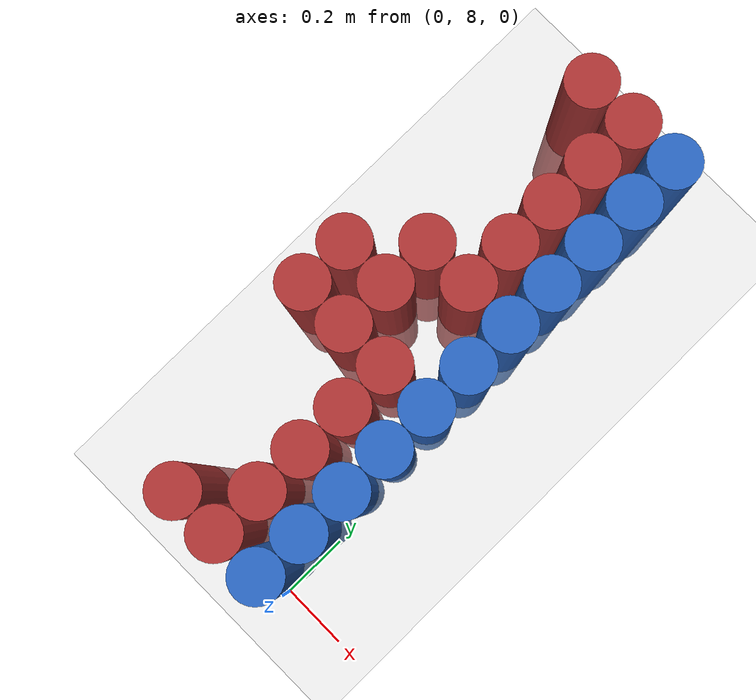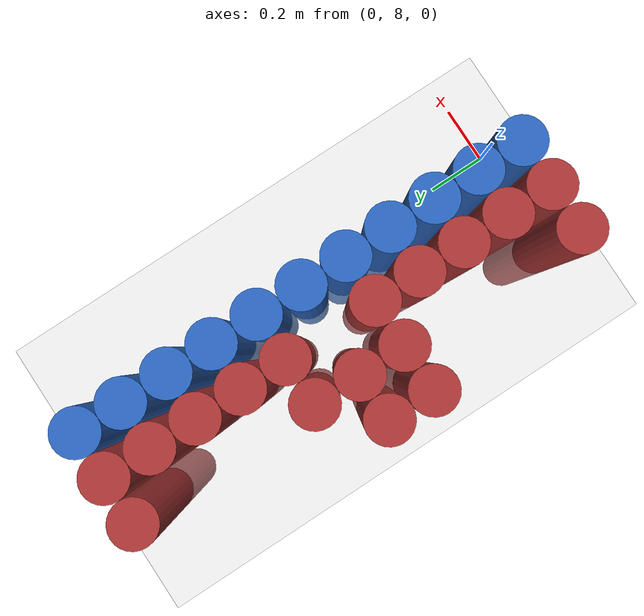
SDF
<sdf version="1.6">
 <world name="default">
  <model name="ground_plane">
   <static>1</static>
   <link name="link">
    <collision name="collision">
     <geometry><plane><normal>0 0 1</normal><size>100 100</size></plane></geometry>
     <surface><friction><ode><mu>100</mu><mu2>50</mu2></ode></friction></surface>
    </collision>
    <visual name="visual">
     <cast_shadows>0</cast_shadows>
     <geometry><plane><normal>0 0 1</normal><size>100 100</size></plane></geometry>
     <material>
      <script><uri>file://media/materials/scripts/gazebo.material</uri><name>Gazebo/Grey</name></script>
     </material>
    </visual>
   </link>
  </model>
  <model name="unit_cylinder_315">
   <static>1</static>
   <pose>-0.525000 8.625000 0.000000 0.000000 0.000000 0.000000</pose>
   <link name="link">
    <inertial>
     <mass>1</mass>
     <inertia><ixx>0.145833</ixx><ixy>0</ixy><ixz>0</ixz><iyy>0.145833</iyy><iyz>0</iyz><izz>0.125</izz></inertia>
    </inertial>
    <collision name="collision">
     <geometry><cylinder><radius>0.075000</radius><length>1</length></cylinder></geometry>
    </collision>
    <visual name="visual">
     <geometry><cylinder><radius>0.075000</radius><length>1</length></cylinder></geometry>
     <material>
      <ambient>0.648000 0.192000 0.192000 1</ambient>
      <diffuse>0.648000 0.192000 0.192000 1</diffuse>
     </material>
     <material>
      <script><name>Gazebo/Grey</name><uri>file://media/materials/scripts/gazebo.material</uri></script>
     </material>
    </visual>
   </link>
  </model>
  <model name="unit_cylinder_316">
   <static>1</static>
   <pose>-0.525000 8.775000 0.000000 0.000000 0.000000 0.000000</pose>
   <link name="link">
    <inertial>
     <mass>1</mass>
     <inertia><ixx>0.145833</ixx><ixy>0</ixy><ixz>0</ixz><iyy>0.145833</iyy><iyz>0</iyz><izz>0.125</izz></inertia>
    </inertial>
    <collision name="collision">
     <geometry><cylinder><radius>0.075000</radius><length>1</length></cylinder></geometry>
    </collision>
    <visual name="visual">
     <geometry><cylinder><radius>0.075000</radius><length>1</length></cylinder></geometry>
     <material>
      <ambient>0.648000 0.192000 0.192000 1</ambient>
      <diffuse>0.648000 0.192000 0.192000 1</diffuse>
     </material>
     <material>
      <script><name>Gazebo/Grey</name><uri>file://media/materials/scripts/gazebo.material</uri></script>
     </material>
    </visual>
   </link>
  </model>
  <model name="unit_cylinder_330">
   <static>1</static>
   <pose>-0.375000 8.025000 0.000000 0.000000 0.000000 0.000000</pose>
   <link name="link">
    <inertial>
     <mass>1</mass>
     <inertia><ixx>0.145833</ixx><ixy>0</ixy><ixz>0</ixz><iyy>0.145833</iyy><iyz>0</iyz><izz>0.125</izz></inertia>
    </inertial>
    <collision name="collision">
     <geometry><cylinder><radius>0.075000</radius><length>1</length></cylinder></geometry>
    </collision>
    <visual name="visual">
     <geometry><cylinder><radius>0.075000</radius><length>1</length></cylinder></geometry>
     <material>
      <ambient>0.648000 0.192000 0.192000 1</ambient>
      <diffuse>0.648000 0.192000 0.192000 1</diffuse>
     </material>
     <material>
      <script><name>Gazebo/Grey</name><uri>file://media/materials/scripts/gazebo.material</uri></script>
     </material>
    </visual>
   </link>
  </model>
  <model name="unit_cylinder_331">
   <static>1</static>
   <pose>-0.375000 8.625000 0.000000 0.000000 0.000000 0.000000</pose>
   <link name="link">
    <inertial>
     <mass>1</mass>
     <inertia><ixx>0.145833</ixx><ixy>0</ixy><ixz>0</ixz><iyy>0.145833</iyy><iyz>0</iyz><izz>0.125</izz></inertia>
    </inertial>
    <collision name="collision">
     <geometry><cylinder><radius>0.075000</radius><length>1</length></cylinder></geometry>
    </collision>
    <visual name="visual">
     <geometry><cylinder><radius>0.075000</radius><length>1</length></cylinder></geometry>
     <material>
      <ambient>0.648000 0.192000 0.192000 1</ambient>
      <diffuse>0.648000 0.192000 0.192000 1</diffuse>
     </material>
     <material>
      <script><name>Gazebo/Grey</name><uri>file://media/materials/scripts/gazebo.material</uri></script>
     </material>
    </visual>
   </link>
  </model>
  <model name="unit_cylinder_332">
   <static>1</static>
   <pose>-0.375000 8.775000 0.000000 0.000000 0.000000 0.000000</pose>
   <link name="link">
    <inertial>
     <mass>1</mass>
     <inertia><ixx>0.145833</ixx><ixy>0</ixy><ixz>0</ixz><iyy>0.145833</iyy><iyz>0</iyz><izz>0.125</izz></inertia>
    </inertial>
    <collision name="collision">
     <geometry><cylinder><radius>0.075000</radius><length>1</length></cylinder></geometry>
    </collision>
    <visual name="visual">
     <geometry><cylinder><radius>0.075000</radius><length>1</length></cylinder></geometry>
     <material>
      <ambient>0.648000 0.192000 0.192000 1</ambient>
      <diffuse>0.648000 0.192000 0.192000 1</diffuse>
     </material>
     <material>
      <script><name>Gazebo/Grey</name><uri>file://media/materials/scripts/gazebo.material</uri></script>
     </material>
    </visual>
   </link>
  </model>
  <model name="unit_cylinder_333">
   <static>1</static>
   <pose>-0.375000 8.925000 0.000000 0.000000 0.000000 0.000000</pose>
   <link name="link">
    <inertial>
     <mass>1</mass>
     <inertia><ixx>0.145833</ixx><ixy>0</ixy><ixz>0</ixz><iyy>0.145833</iyy><iyz>0</iyz><izz>0.125</izz></inertia>
    </inertial>
    <collision name="collision">
     <geometry><cylinder><radius>0.075000</radius><length>1</length></cylinder></geometry>
    </collision>
    <visual name="visual">
     <geometry><cylinder><radius>0.075000</radius><length>1</length></cylinder></geometry>
     <material>
      <ambient>0.648000 0.192000 0.192000 1</ambient>
      <diffuse>0.648000 0.192000 0.192000 1</diffuse>
     </material>
     <material>
      <script><name>Gazebo/Grey</name><uri>file://media/materials/scripts/gazebo.material</uri></script>
     </material>
    </visual>
   </link>
  </model>
  <model name="unit_cylinder_334">
   <static>1</static>
   <pose>-0.375000 9.525000 0.000000 0.000000 0.000000 0.000000</pose>
   <link name="link">
    <inertial>
     <mass>1</mass>
     <inertia><ixx>0.145833</ixx><ixy>0</ixy><ixz>0</ixz><iyy>0.145833</iyy><iyz>0</iyz><izz>0.125</izz></inertia>
    </inertial>
    <collision name="collision">
     <geometry><cylinder><radius>0.075000</radius><length>1</length></cylinder></geometry>
    </collision>
    <visual name="visual">
     <geometry><cylinder><radius>0.075000</radius><length>1</length></cylinder></geometry>
     <material>
      <ambient>0.648000 0.192000 0.192000 1</ambient>
      <diffuse>0.648000 0.192000 0.192000 1</diffuse>
     </material>
     <material>
      <script><name>Gazebo/Grey</name><uri>file://media/materials/scripts/gazebo.material</uri></script>
     </material>
    </visual>
   </link>
  </model>
  <model name="unit_cylinder_342">
   <static>1</static>
   <pose>-0.225000 8.025000 0.000000 0.000000 0.000000 0.000000</pose>
   <link name="link">
    <inertial>
     <mass>1</mass>
     <inertia><ixx>0.145833</ixx><ixy>0</ixy><ixz>0</ixz><iyy>0.145833</iyy><iyz>0</iyz><izz>0.125</izz></inertia>
    </inertial>
    <collision name="collision">
     <geometry><cylinder><radius>0.075000</radius><length>1</length></cylinder></geometry>
    </collision>
    <visual name="visual">
     <geometry><cylinder><radius>0.075000</radius><length>1</length></cylinder></geometry>
     <material>
      <ambient>0.648000 0.192000 0.192000 1</ambient>
      <diffuse>0.648000 0.192000 0.192000 1</diffuse>
     </material>
     <material>
      <script><name>Gazebo/Grey</name><uri>file://media/materials/scripts/gazebo.material</uri></script>
     </material>
    </visual>
   </link>
  </model>
  <model name="unit_cylinder_343">
   <static>1</static>
   <pose>-0.225000 8.175000 0.000000 0.000000 0.000000 0.000000</pose>
   <link name="link">
    <inertial>
     <mass>1</mass>
     <inertia><ixx>0.145833</ixx><ixy>0</ixy><ixz>0</ixz><iyy>0.145833</iyy><iyz>0</iyz><izz>0.125</izz></inertia>
    </inertial>
    <collision name="collision">
     <geometry><cylinder><radius>0.075000</radius><length>1</length></cylinder></geometry>
    </collision>
    <visual name="visual">
     <geometry><cylinder><radius>0.075000</radius><length>1</length></cylinder></geometry>
     <material>
      <ambient>0.648000 0.192000 0.192000 1</ambient>
      <diffuse>0.648000 0.192000 0.192000 1</diffuse>
     </material>
     <material>
      <script><name>Gazebo/Grey</name><uri>file://media/materials/scripts/gazebo.material</uri></script>
     </material>
    </visual>
   </link>
  </model>
  <model name="unit_cylinder_344">
   <static>1</static>
   <pose>-0.225000 8.325000 0.000000 0.000000 0.000000 0.000000</pose>
   <link name="link">
    <inertial>
     <mass>1</mass>
     <inertia><ixx>0.145833</ixx><ixy>0</ixy><ixz>0</ixz><iyy>0.145833</iyy><iyz>0</iyz><izz>0.125</izz></inertia>
    </inertial>
    <collision name="collision">
     <geometry><cylinder><radius>0.075000</radius><length>1</length></cylinder></geometry>
    </collision>
    <visual name="visual">
     <geometry><cylinder><radius>0.075000</radius><length>1</length></cylinder></geometry>
     <material>
      <ambient>0.648000 0.192000 0.192000 1</ambient>
      <diffuse>0.648000 0.192000 0.192000 1</diffuse>
     </material>
     <material>
      <script><name>Gazebo/Grey</name><uri>file://media/materials/scripts/gazebo.material</uri></script>
     </material>
    </visual>
   </link>
  </model>
  <model name="unit_cylinder_345">
   <static>1</static>
   <pose>-0.225000 8.475000 0.000000 0.000000 0.000000 0.000000</pose>
   <link name="link">
    <inertial>
     <mass>1</mass>
     <inertia><ixx>0.145833</ixx><ixy>0</ixy><ixz>0</ixz><iyy>0.145833</iyy><iyz>0</iyz><izz>0.125</izz></inertia>
    </inertial>
    <collision name="collision">
     <geometry><cylinder><radius>0.075000</radius><length>1</length></cylinder></geometry>
    </collision>
    <visual name="visual">
     <geometry><cylinder><radius>0.075000</radius><length>1</length></cylinder></geometry>
     <material>
      <ambient>0.648000 0.192000 0.192000 1</ambient>
      <diffuse>0.648000 0.192000 0.192000 1</diffuse>
     </material>
     <material>
      <script><name>Gazebo/Grey</name><uri>file://media/materials/scripts/gazebo.material</uri></script>
     </material>
    </visual>
   </link>
  </model>
  <model name="unit_cylinder_346">
   <static>1</static>
   <pose>-0.225000 8.625000 0.000000 0.000000 0.000000 0.000000</pose>
   <link name="link">
    <inertial>
     <mass>1</mass>
     <inertia><ixx>0.145833</ixx><ixy>0</ixy><ixz>0</ixz><iyy>0.145833</iyy><iyz>0</iyz><izz>0.125</izz></inertia>
    </inertial>
    <collision name="collision">
     <geometry><cylinder><radius>0.075000</radius><length>1</length></cylinder></geometry>
    </collision>
    <visual name="visual">
     <geometry><cylinder><radius>0.075000</radius><length>1</length></cylinder></geometry>
     <material>
      <ambient>0.648000 0.192000 0.192000 1</ambient>
      <diffuse>0.648000 0.192000 0.192000 1</diffuse>
     </material>
     <material>
      <script><name>Gazebo/Grey</name><uri>file://media/materials/scripts/gazebo.material</uri></script>
     </material>
    </visual>
   </link>
  </model>
  <model name="unit_cylinder_347">
   <static>1</static>
   <pose>-0.225000 8.925000 0.000000 0.000000 0.000000 0.000000</pose>
   <link name="link">
    <inertial>
     <mass>1</mass>
     <inertia><ixx>0.145833</ixx><ixy>0</ixy><ixz>0</ixz><iyy>0.145833</iyy><iyz>0</iyz><izz>0.125</izz></inertia>
    </inertial>
    <collision name="collision">
     <geometry><cylinder><radius>0.075000</radius><length>1</length></cylinder></geometry>
    </collision>
    <visual name="visual">
     <geometry><cylinder><radius>0.075000</radius><length>1</length></cylinder></geometry>
     <material>
      <ambient>0.648000 0.192000 0.192000 1</ambient>
      <diffuse>0.648000 0.192000 0.192000 1</diffuse>
     </material>
     <material>
      <script><name>Gazebo/Grey</name><uri>file://media/materials/scripts/gazebo.material</uri></script>
     </material>
    </visual>
   </link>
  </model>
  <model name="unit_cylinder_348">
   <static>1</static>
   <pose>-0.225000 9.075000 0.000000 0.000000 0.000000 0.000000</pose>
   <link name="link">
    <inertial>
     <mass>1</mass>
     <inertia><ixx>0.145833</ixx><ixy>0</ixy><ixz>0</ixz><iyy>0.145833</iyy><iyz>0</iyz><izz>0.125</izz></inertia>
    </inertial>
    <collision name="collision">
     <geometry><cylinder><radius>0.075000</radius><length>1</length></cylinder></geometry>
    </collision>
    <visual name="visual">
     <geometry><cylinder><radius>0.075000</radius><length>1</length></cylinder></geometry>
     <material>
      <ambient>0.648000 0.192000 0.192000 1</ambient>
      <diffuse>0.648000 0.192000 0.192000 1</diffuse>
     </material>
     <material>
      <script><name>Gazebo/Grey</name><uri>file://media/materials/scripts/gazebo.material</uri></script>
     </material>
    </visual>
   </link>
  </model>
  <model name="unit_cylinder_349">
   <static>1</static>
   <pose>-0.225000 9.225000 0.000000 0.000000 0.000000 0.000000</pose>
   <link name="link">
    <inertial>
     <mass>1</mass>
     <inertia><ixx>0.145833</ixx><ixy>0</ixy><ixz>0</ixz><iyy>0.145833</iyy><iyz>0</iyz><izz>0.125</izz></inertia>
    </inertial>
    <collision name="collision">
     <geometry><cylinder><radius>0.075000</radius><length>1</length></cylinder></geometry>
    </collision>
    <visual name="visual">
     <geometry><cylinder><radius>0.075000</radius><length>1</length></cylinder></geometry>
     <material>
      <ambient>0.648000 0.192000 0.192000 1</ambient>
      <diffuse>0.648000 0.192000 0.192000 1</diffuse>
     </material>
     <material>
      <script><name>Gazebo/Grey</name><uri>file://media/materials/scripts/gazebo.material</uri></script>
     </material>
    </visual>
   </link>
  </model>
  <model name="unit_cylinder_350">
   <static>1</static>
   <pose>-0.225000 9.375000 0.000000 0.000000 0.000000 0.000000</pose>
   <link name="link">
    <inertial>
     <mass>1</mass>
     <inertia><ixx>0.145833</ixx><ixy>0</ixy><ixz>0</ixz><iyy>0.145833</iyy><iyz>0</iyz><izz>0.125</izz></inertia>
    </inertial>
    <collision name="collision">
     <geometry><cylinder><radius>0.075000</radius><length>1</length></cylinder></geometry>
    </collision>
    <visual name="visual">
     <geometry><cylinder><radius>0.075000</radius><length>1</length></cylinder></geometry>
     <material>
      <ambient>0.648000 0.192000 0.192000 1</ambient>
      <diffuse>0.648000 0.192000 0.192000 1</diffuse>
     </material>
     <material>
      <script><name>Gazebo/Grey</name><uri>file://media/materials/scripts/gazebo.material</uri></script>
     </material>
    </visual>
   </link>
  </model>
  <model name="unit_cylinder_351">
   <static>1</static>
   <pose>-0.225000 9.525000 0.000000 0.000000 0.000000 0.000000</pose>
   <link name="link">
    <inertial>
     <mass>1</mass>
     <inertia><ixx>0.145833</ixx><ixy>0</ixy><ixz>0</ixz><iyy>0.145833</iyy><iyz>0</iyz><izz>0.125</izz></inertia>
    </inertial>
    <collision name="collision">
     <geometry><cylinder><radius>0.075000</radius><length>1</length></cylinder></geometry>
    </collision>
    <visual name="visual">
     <geometry><cylinder><radius>0.075000</radius><length>1</length></cylinder></geometry>
     <material>
      <ambient>0.648000 0.192000 0.192000 1</ambient>
      <diffuse>0.648000 0.192000 0.192000 1</diffuse>
     </material>
     <material>
      <script><name>Gazebo/Grey</name><uri>file://media/materials/scripts/gazebo.material</uri></script>
     </material>
    </visual>
   </link>
  </model>
  <model name="unit_cylinder_371">
   <static>1</static>
   <pose>-0.075000 8.025000 0.000000 0.000000 0.000000 0.000000</pose>
   <link name="link">
    <inertial>
     <mass>1</mass>
     <inertia><ixx>0.145833</ixx><ixy>0</ixy><ixz>0</ixz><iyy>0.145833</iyy><iyz>0</iyz><izz>0.125</izz></inertia>
    </inertial>
    <collision name="collision">
     <geometry><cylinder><radius>0.075000</radius><length>1</length></cylinder></geometry>
    </collision>
    <visual name="visual">
     <geometry><cylinder><radius>0.075000</radius><length>1</length></cylinder></geometry>
     <material>
      <ambient>0.152000 0.379000 0.720000 1</ambient>
      <diffuse>0.152000 0.379000 0.720000 1</diffuse>
     </material>
     <material>
      <script><name>Gazebo/Grey</name><uri>file://media/materials/scripts/gazebo.material</uri></script>
     </material>
    </visual>
   </link>
  </model>
  <model name="unit_cylinder_372">
   <static>1</static>
   <pose>-0.075000 8.175000 0.000000 0.000000 0.000000 0.000000</pose>
   <link name="link">
    <inertial>
     <mass>1</mass>
     <inertia><ixx>0.145833</ixx><ixy>0</ixy><ixz>0</ixz><iyy>0.145833</iyy><iyz>0</iyz><izz>0.125</izz></inertia>
    </inertial>
    <collision name="collision">
     <geometry><cylinder><radius>0.075000</radius><length>1</length></cylinder></geometry>
    </collision>
    <visual name="visual">
     <geometry><cylinder><radius>0.075000</radius><length>1</length></cylinder></geometry>
     <material>
      <ambient>0.152000 0.379000 0.720000 1</ambient>
      <diffuse>0.152000 0.379000 0.720000 1</diffuse>
     </material>
     <material>
      <script><name>Gazebo/Grey</name><uri>file://media/materials/scripts/gazebo.material</uri></script>
     </material>
    </visual>
   </link>
  </model>
  <model name="unit_cylinder_373">
   <static>1</static>
   <pose>-0.075000 8.325000 0.000000 0.000000 0.000000 0.000000</pose>
   <link name="link">
    <inertial>
     <mass>1</mass>
     <inertia><ixx>0.145833</ixx><ixy>0</ixy><ixz>0</ixz><iyy>0.145833</iyy><iyz>0</iyz><izz>0.125</izz></inertia>
    </inertial>
    <collision name="collision">
     <geometry><cylinder><radius>0.075000</radius><length>1</length></cylinder></geometry>
    </collision>
    <visual name="visual">
     <geometry><cylinder><radius>0.075000</radius><length>1</length></cylinder></geometry>
     <material>
      <ambient>0.152000 0.379000 0.720000 1</ambient>
      <diffuse>0.152000 0.379000 0.720000 1</diffuse>
     </material>
     <material>
      <script><name>Gazebo/Grey</name><uri>file://media/materials/scripts/gazebo.material</uri></script>
     </material>
    </visual>
   </link>
  </model>
  <model name="unit_cylinder_374">
   <static>1</static>
   <pose>-0.075000 8.475000 0.000000 0.000000 0.000000 0.000000</pose>
   <link name="link">
    <inertial>
     <mass>1</mass>
     <inertia><ixx>0.145833</ixx><ixy>0</ixy><ixz>0</ixz><iyy>0.145833</iyy><iyz>0</iyz><izz>0.125</izz></inertia>
    </inertial>
    <collision name="collision">
     <geometry><cylinder><radius>0.075000</radius><length>1</length></cylinder></geometry>
    </collision>
    <visual name="visual">
     <geometry><cylinder><radius>0.075000</radius><length>1</length></cylinder></geometry>
     <material>
      <ambient>0.152000 0.379000 0.720000 1</ambient>
      <diffuse>0.152000 0.379000 0.720000 1</diffuse>
     </material>
     <material>
      <script><name>Gazebo/Grey</name><uri>file://media/materials/scripts/gazebo.material</uri></script>
     </material>
    </visual>
   </link>
  </model>
  <model name="unit_cylinder_375">
   <static>1</static>
   <pose>-0.075000 8.625000 0.000000 0.000000 0.000000 0.000000</pose>
   <link name="link">
    <inertial>
     <mass>1</mass>
     <inertia><ixx>0.145833</ixx><ixy>0</ixy><ixz>0</ixz><iyy>0.145833</iyy><iyz>0</iyz><izz>0.125</izz></inertia>
    </inertial>
    <collision name="collision">
     <geometry><cylinder><radius>0.075000</radius><length>1</length></cylinder></geometry>
    </collision>
    <visual name="visual">
     <geometry><cylinder><radius>0.075000</radius><length>1</length></cylinder></geometry>
     <material>
      <ambient>0.152000 0.379000 0.720000 1</ambient>
      <diffuse>0.152000 0.379000 0.720000 1</diffuse>
     </material>
     <material>
      <script><name>Gazebo/Grey</name><uri>file://media/materials/scripts/gazebo.material</uri></script>
     </material>
    </visual>
   </link>
  </model>
  <model name="unit_cylinder_376">
   <static>1</static>
   <pose>-0.075000 8.775000 0.000000 0.000000 0.000000 0.000000</pose>
   <link name="link">
    <inertial>
     <mass>1</mass>
     <inertia><ixx>0.145833</ixx><ixy>0</ixy><ixz>0</ixz><iyy>0.145833</iyy><iyz>0</iyz><izz>0.125</izz></inertia>
    </inertial>
    <collision name="collision">
     <geometry><cylinder><radius>0.075000</radius><length>1</length></cylinder></geometry>
    </collision>
    <visual name="visual">
     <geometry><cylinder><radius>0.075000</radius><length>1</length></cylinder></geometry>
     <material>
      <ambient>0.152000 0.379000 0.720000 1</ambient>
      <diffuse>0.152000 0.379000 0.720000 1</diffuse>
     </material>
     <material>
      <script><name>Gazebo/Grey</name><uri>file://media/materials/scripts/gazebo.material</uri></script>
     </material>
    </visual>
   </link>
  </model>
  <model name="unit_cylinder_377">
   <static>1</static>
   <pose>-0.075000 8.925000 0.000000 0.000000 0.000000 0.000000</pose>
   <link name="link">
    <inertial>
     <mass>1</mass>
     <inertia><ixx>0.145833</ixx><ixy>0</ixy><ixz>0</ixz><iyy>0.145833</iyy><iyz>0</iyz><izz>0.125</izz></inertia>
    </inertial>
    <collision name="collision">
     <geometry><cylinder><radius>0.075000</radius><length>1</length></cylinder></geometry>
    </collision>
    <visual name="visual">
     <geometry><cylinder><radius>0.075000</radius><length>1</length></cylinder></geometry>
     <material>
      <ambient>0.152000 0.379000 0.720000 1</ambient>
      <diffuse>0.152000 0.379000 0.720000 1</diffuse>
     </material>
     <material>
      <script><name>Gazebo/Grey</name><uri>file://media/materials/scripts/gazebo.material</uri></script>
     </material>
    </visual>
   </link>
  </model>
  <model name="unit_cylinder_378">
   <static>1</static>
   <pose>-0.075000 9.075000 0.000000 0.000000 0.000000 0.000000</pose>
   <link name="link">
    <inertial>
     <mass>1</mass>
     <inertia><ixx>0.145833</ixx><ixy>0</ixy><ixz>0</ixz><iyy>0.145833</iyy><iyz>0</iyz><izz>0.125</izz></inertia>
    </inertial>
    <collision name="collision">
     <geometry><cylinder><radius>0.075000</radius><length>1</length></cylinder></geometry>
    </collision>
    <visual name="visual">
     <geometry><cylinder><radius>0.075000</radius><length>1</length></cylinder></geometry>
     <material>
      <ambient>0.152000 0.379000 0.720000 1</ambient>
      <diffuse>0.152000 0.379000 0.720000 1</diffuse>
     </material>
     <material>
      <script><name>Gazebo/Grey</name><uri>file://media/materials/scripts/gazebo.material</uri></script>
     </material>
    </visual>
   </link>
  </model>
  <model name="unit_cylinder_379">
   <static>1</static>
   <pose>-0.075000 9.225000 0.000000 0.000000 0.000000 0.000000</pose>
   <link name="link">
    <inertial>
     <mass>1</mass>
     <inertia><ixx>0.145833</ixx><ixy>0</ixy><ixz>0</ixz><iyy>0.145833</iyy><iyz>0</iyz><izz>0.125</izz></inertia>
    </inertial>
    <collision name="collision">
     <geometry><cylinder><radius>0.075000</radius><length>1</length></cylinder></geometry>
    </collision>
    <visual name="visual">
     <geometry><cylinder><radius>0.075000</radius><length>1</length></cylinder></geometry>
     <material>
      <ambient>0.152000 0.379000 0.720000 1</ambient>
      <diffuse>0.152000 0.379000 0.720000 1</diffuse>
     </material>
     <material>
      <script><name>Gazebo/Grey</name><uri>file://media/materials/scripts/gazebo.material</uri></script>
     </material>
    </visual>
   </link>
  </model>
  <model name="unit_cylinder_380">
   <static>1</static>
   <pose>-0.075000 9.375000 0.000000 0.000000 0.000000 0.000000</pose>
   <link name="link">
    <inertial>
     <mass>1</mass>
     <inertia><ixx>0.145833</ixx><ixy>0</ixy><ixz>0</ixz><iyy>0.145833</iyy><iyz>0</iyz><izz>0.125</izz></inertia>
    </inertial>
    <collision name="collision">
     <geometry><cylinder><radius>0.075000</radius><length>1</length></cylinder></geometry>
    </collision>
    <visual name="visual">
     <geometry><cylinder><radius>0.075000</radius><length>1</length></cylinder></geometry>
     <material>
      <ambient>0.152000 0.379000 0.720000 1</ambient>
      <diffuse>0.152000 0.379000 0.720000 1</diffuse>
     </material>
     <material>
      <script><name>Gazebo/Grey</name><uri>file://media/materials/scripts/gazebo.material</uri></script>
     </material>
    </visual>
   </link>
  </model>
  <model name="unit_cylinder_381">
   <static>1</static>
   <pose>-0.075000 9.525000 0.000000 0.000000 0.000000 0.000000</pose>
   <link name="link">
    <inertial>
     <mass>1</mass>
     <inertia><ixx>0.145833</ixx><ixy>0</ixy><ixz>0</ixz><iyy>0.145833</iyy><iyz>0</iyz><izz>0.125</izz></inertia>
    </inertial>
    <collision name="collision">
     <geometry><cylinder><radius>0.075000</radius><length>1</length></cylinder></geometry>
    </collision>
    <visual name="visual">
     <geometry><cylinder><radius>0.075000</radius><length>1</length></cylinder></geometry>
     <material>
      <ambient>0.152000 0.379000 0.720000 1</ambient>
      <diffuse>0.152000 0.379000 0.720000 1</diffuse>
     </material>
     <material>
      <script><name>Gazebo/Grey</name><uri>file://media/materials/scripts/gazebo.material</uri></script>
     </material>
    </visual>
   </link>
  </model>
 </world>
</sdf>
